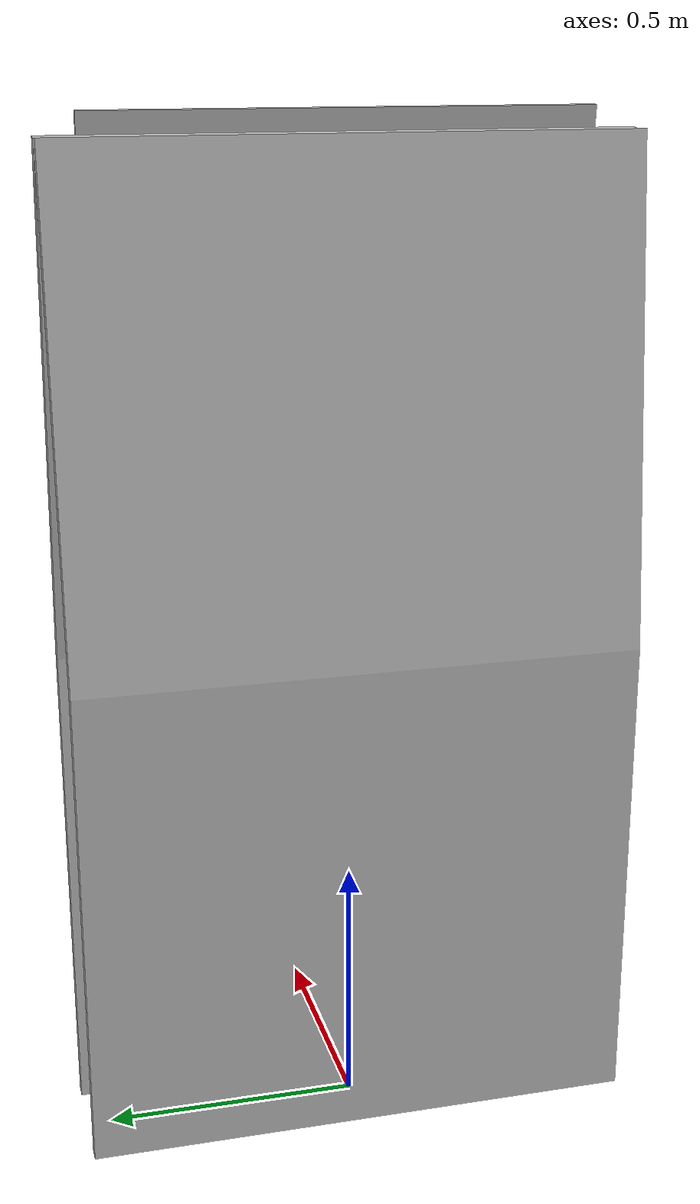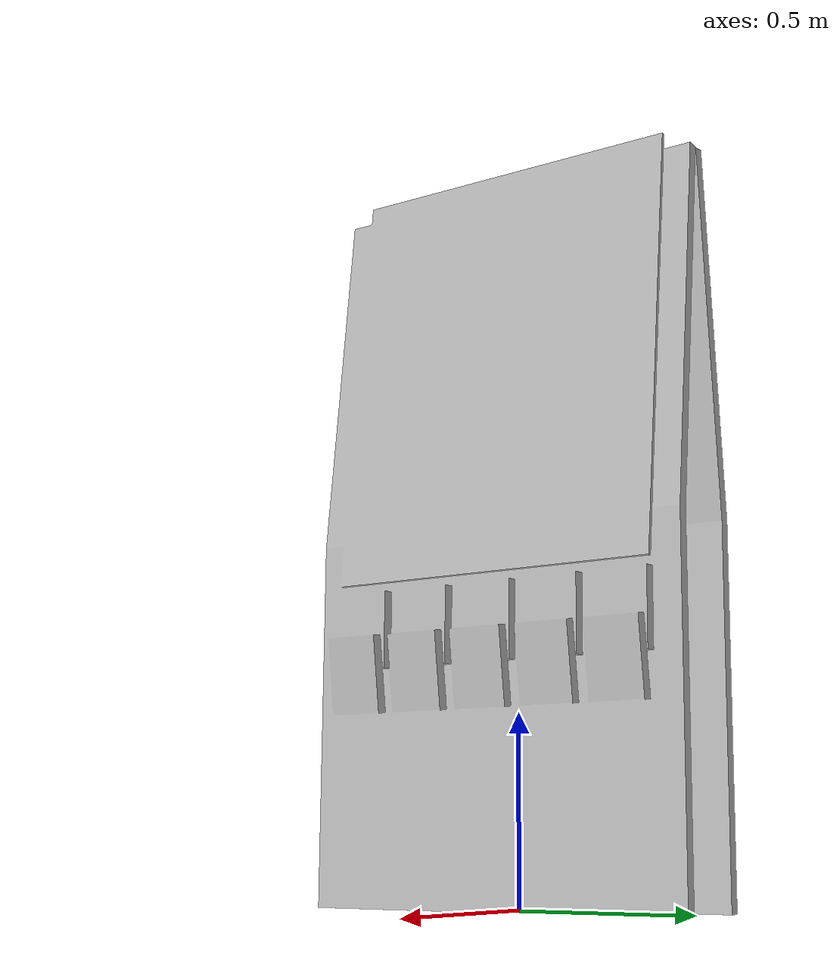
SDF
<?xml version='1.0' encoding='utf-8'?>
<sdf version="1.6">
  <model name="DigitalKiosk">
   <static>true</static>
    <link name="body">
      <pose>0 0 0 0 0 0</pose>

      <visual name="visual">
        <geometry>
          <mesh>
            <uri>model://DigitalKiosk/meshes/DigitalKiosk.obj</uri>
          </mesh>
        </geometry>
      </visual>

      <collision name="collision">
        <geometry>
          <mesh>
            <uri>model://DigitalKiosk/meshes/DigitalKiosk_Col.obj</uri>
          </mesh>
        </geometry>
      </collision>

    </link>
  </model>
</sdf>
